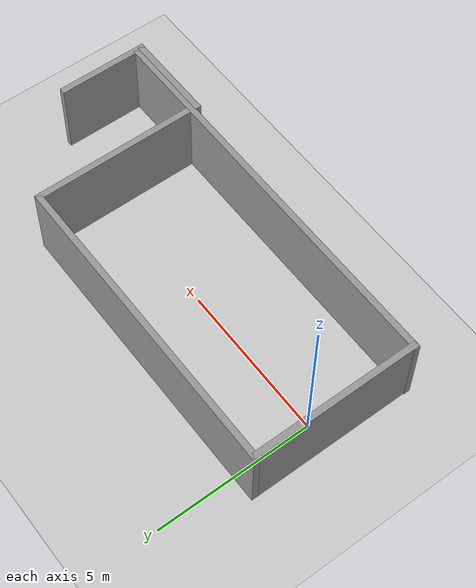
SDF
<sdf version="1.4">
 <world name="default">
  <light name="sun" type="directional">
   <pose>0 0 10 0 -0 0</pose>
   <diffuse>0.8 0.8 0.8 1</diffuse>
   <specular>0.2 0.2 0.2 1</specular>
   <attenuation>
    <range>1000</range>
    <constant>0.9</constant>
    <linear>0.01</linear>
    <quadratic>0.001</quadratic>
   </attenuation>
   <direction>-0.5 0.1 -0.9</direction>
  </light>
  <model name="ground_plane">
   <static>1</static>
   <link name="link">
    <collision name="collision">
     <geometry><plane><normal>0 0 1</normal><size>100 100</size></plane></geometry>
     <surface><friction><ode><mu>100</mu><mu2>50</mu2></ode></friction></surface>
    </collision>
    <visual name="visual">
     <cast_shadows>0</cast_shadows>
     <geometry><plane><normal>0 0 1</normal><size>100 100</size></plane></geometry>
     <material>
      <script><uri>file://media/materials/scripts/gazebo.material</uri><name>Gazebo/Grey</name></script>
     </material>
    </visual>
    <velocity_decay><linear>0</linear><angular>0</angular></velocity_decay>
   </link>
  </model>
  <physics type="ode">
   <max_step_size>0.001</max_step_size>
   <real_time_factor>1</real_time_factor>
   <real_time_update_rate>1000</real_time_update_rate>
   <gravity>0 0 -9.8</gravity>
  </physics>
  <scene><ambient>0.4 0.4 0.4 1</ambient><background>0.7 0.7 0.7 1</background><shadows>1</shadows></scene>
  <spherical_coordinates>
   <surface_model>EARTH_WGS84</surface_model>
   <latitude_deg>0</latitude_deg>
   <longitude_deg>0</longitude_deg>
   <elevation>0</elevation>
   <heading_deg>0</heading_deg>
  </spherical_coordinates>
  <model name="plano2">
   <link name="Wall_0">
    <collision name="Wall_0_Collision">
     <geometry><box><size>12.7858 0.2 2.5</size></box></geometry>
     <pose>0 0 1.25 0 -0 0</pose>
    </collision>
    <visual name="Wall_0_Visual">
     <pose>0 0 1.25 0 -0 0</pose>
     <geometry><box><size>12.7858 0.2 2.5</size></box></geometry>
     <material>
      <script><uri>file://media/materials/scripts/gazebo.material</uri><name>Gazebo/Grey</name></script>
     </material>
    </visual>
    <velocity_decay><linear>0</linear><angular>0</angular></velocity_decay>
    <pose>5.56288 -2.84 0 0 -0 0</pose>
   </link>
   <link name="Wall_2">
    <collision name="Wall_2_Collision">
     <geometry><box><size>5.4572 0.2 2.5</size></box></geometry>
     <pose>0 0 1.25 0 -0 0</pose>
    </collision>
    <visual name="Wall_2_Visual">
     <pose>0 0 1.25 0 -0 0</pose>
     <geometry><box><size>5.4572 0.2 2.5</size></box></geometry>
     <material>
      <script><uri>file://media/materials/scripts/gazebo.material</uri><name>Gazebo/Grey</name></script>
     </material>
    </visual>
    <velocity_decay><linear>0</linear><angular>0</angular></velocity_decay>
    <pose>-0.705705 -0.203442 0 0 -0 1.5708</pose>
   </link>
   <link name="Wall_3">
    <collision name="Wall_3_Collision">
     <geometry><box><size>10.0631 0.2 2.5</size></box></geometry>
     <pose>0 0 1.25 0 -0 0</pose>
    </collision>
    <visual name="Wall_3_Visual">
     <pose>0 0 1.25 0 -0 0</pose>
     <geometry><box><size>10.0631 0.2 2.5</size></box></geometry>
     <material>
      <script><uri>file://media/materials/scripts/gazebo.material</uri><name>Gazebo/Grey</name></script>
     </material>
    </visual>
    <velocity_decay><linear>0</linear><angular>0</angular></velocity_decay>
    <pose>4.22583 2.42516 0 0 -0 0</pose>
   </link>
   <link name="Wall_4">
    <collision name="Wall_4_Collision">
     <geometry><box><size>5.6433 0.2 2.5</size></box></geometry>
     <pose>0 0 1.25 0 -0 0</pose>
    </collision>
    <visual name="Wall_4_Visual">
     <pose>0 0 1.25 0 -0 0</pose>
     <geometry><box><size>5.6433 0.2 2.5</size></box></geometry>
     <material>
      <script><uri>file://media/materials/scripts/gazebo.material</uri><name>Gazebo/Grey</name></script>
     </material>
    </visual>
    <velocity_decay><linear>0</linear><angular>0</angular></velocity_decay>
    <pose>9.15737 -0.29649 0 0 0 -1.5708</pose>
   </link>
   <link name="Wall_5">
    <collision name="Wall_5_Collision">
     <geometry><box><size>2.99144 0.2 2.5</size></box></geometry>
     <pose>0 0 1.25 0 -0 0</pose>
    </collision>
    <visual name="Wall_5_Visual">
     <pose>0 0 1.25 0 -0 0</pose>
     <geometry><box><size>2.99144 0.2 2.5</size></box></geometry>
     <material>
      <script><uri>file://media/materials/scripts/gazebo.material</uri><name>Gazebo/Grey</name></script>
     </material>
    </visual>
    <velocity_decay><linear>0</linear><angular>0</angular></velocity_decay>
    <pose>10.5531 -3.01814 0 0 -0 0</pose>
   </link>
   <link name="Wall_6">
    <collision name="Wall_6_Collision">
     <geometry><box><size>0.21 0.2 2.5</size></box></geometry>
     <pose>0 0 1.25 0 -0 0</pose>
    </collision>
    <visual name="Wall_6_Visual">
     <pose>0 0 1.25 0 -0 0</pose>
     <geometry><box><size>0.21 0.2 2.5</size></box></geometry>
     <material>
      <script><uri>file://media/materials/scripts/gazebo.material</uri><name>Gazebo/Grey</name></script>
     </material>
    </visual>
    <velocity_decay><linear>0</linear><angular>0</angular></velocity_decay>
    <pose>11.9538 -3.01814 0 0 -0 0</pose>
   </link>
   <link name="Wall_7">
    <collision name="Wall_7_Collision">
     <geometry><box><size>2.94491 0.2 2.5</size></box></geometry>
     <pose>0 0 1.25 0 -0 0</pose>
    </collision>
    <visual name="Wall_7_Visual">
     <pose>0 0 1.25 0 -0 0</pose>
     <geometry><box><size>2.94491 0.2 2.5</size></box></geometry>
     <material>
      <script><uri>file://media/materials/scripts/gazebo.material</uri><name>Gazebo/Grey</name></script>
     </material>
    </visual>
    <velocity_decay><linear>0</linear><angular>0</angular></velocity_decay>
    <pose>11.9588 -1.64568 0 0 -0 1.5708</pose>
   </link>
   <static>1</static>
  </model>
 </world>
</sdf>
